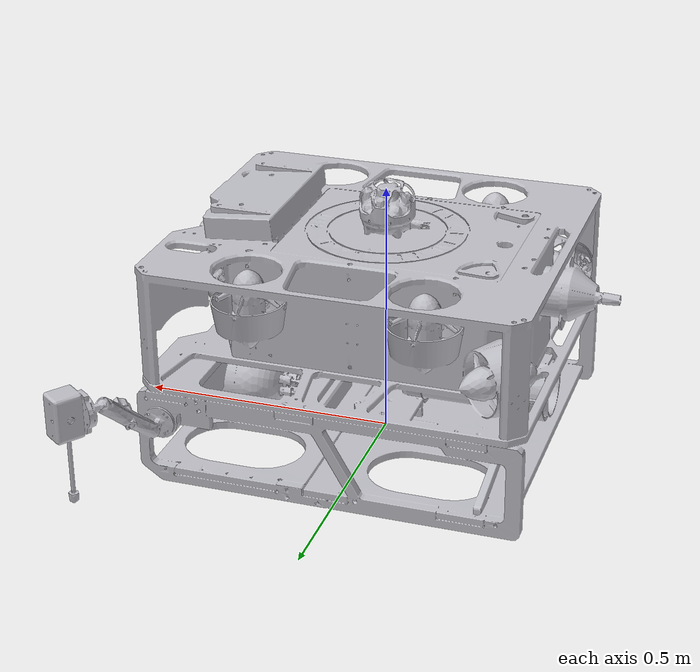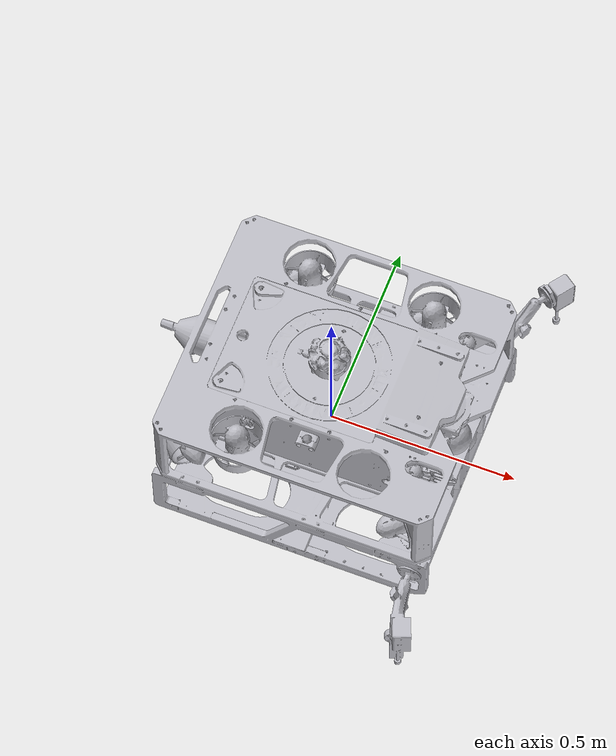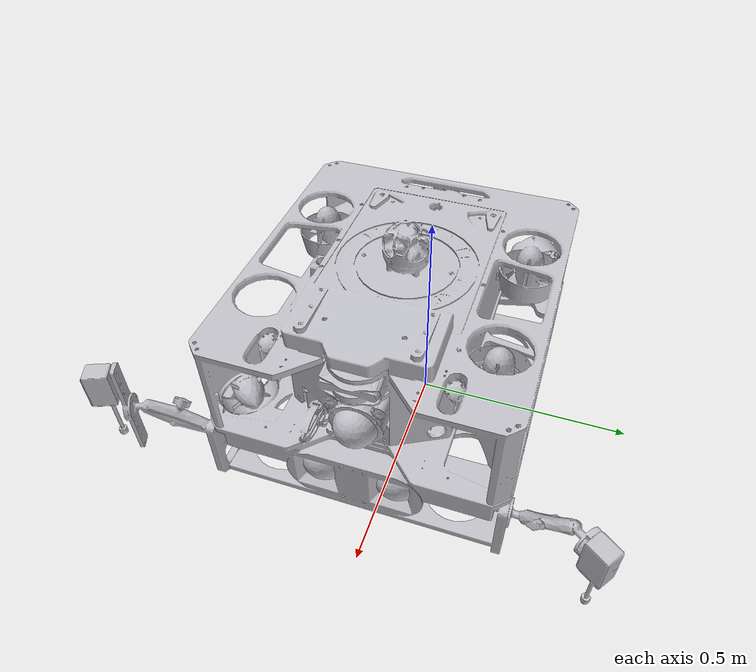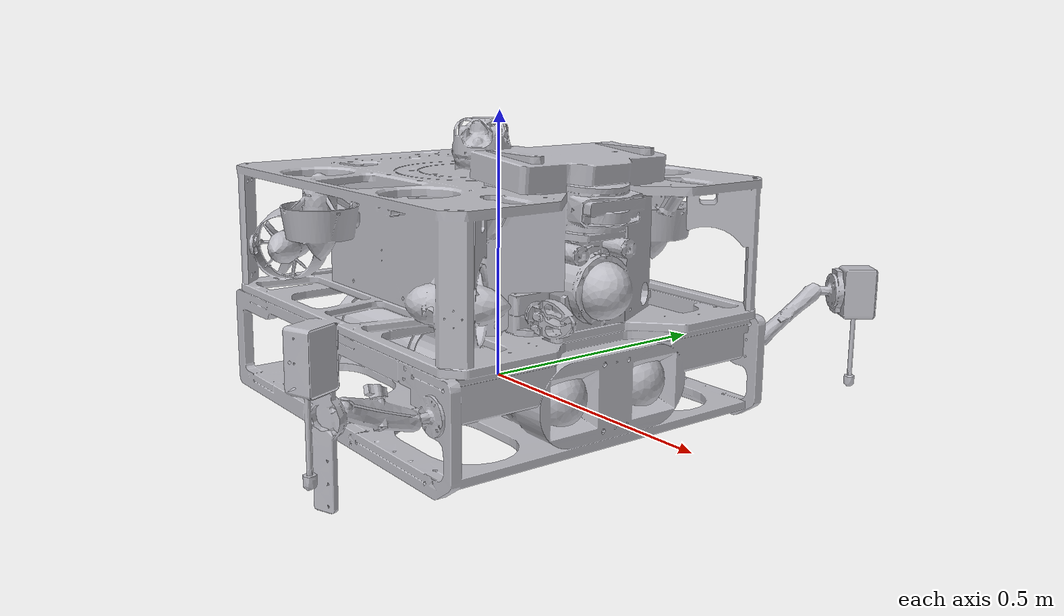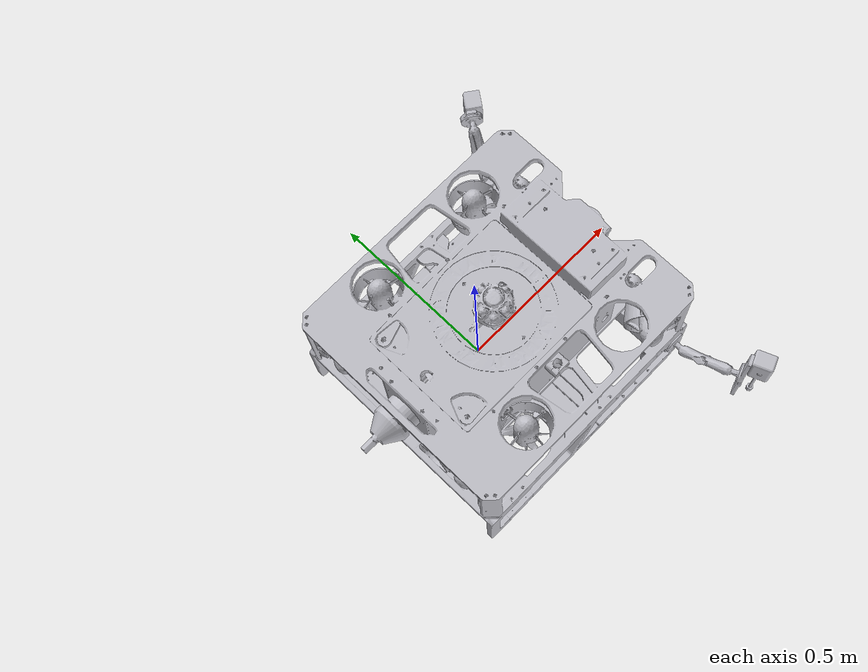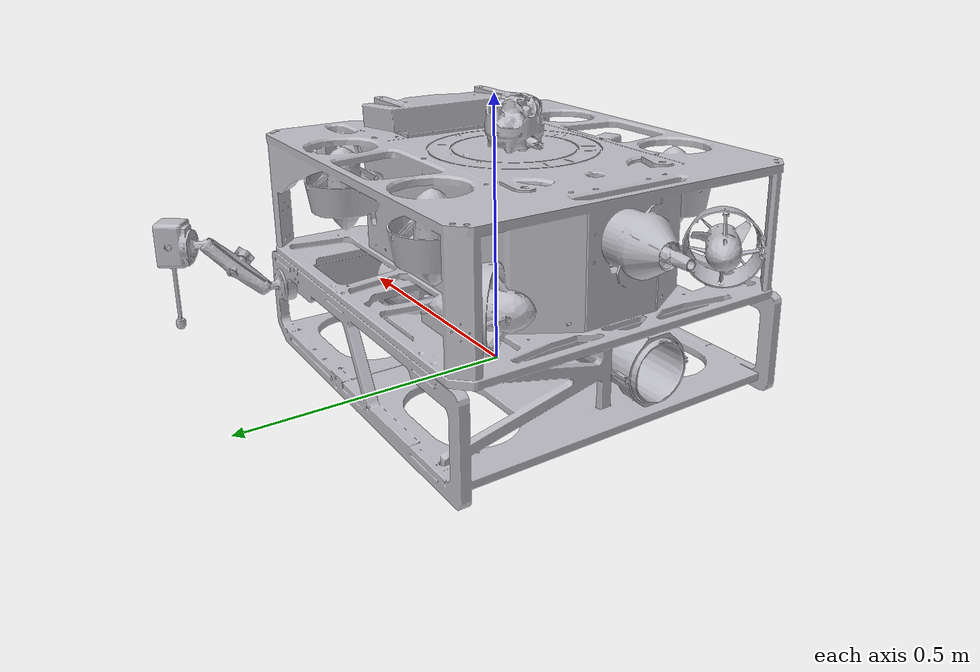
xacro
<?xml version="1.0" ?>
<robot xmlns:xacro="http://ros.org/wiki/xacro" name="rhody">

  <xacro:arg name="namespace" default="rhody" />
  <xacro:property name="namespace" value="$(arg namespace)" scope="global" />
  <xacro:property name="deg" value="${pi / 180.0}" />

  <!-- base_link follows REP-103: x forward, y port, z up.
       The CAD offsets these links came from use y starboard, so all y values
       below are negated with respect to the CAD numbers. -->

  <!-- STL carries no color, so give the link an explicit material.
       Without one RViz renders the mesh red. -->
  <material name="rhody_grey">
    <color rgba="0.75 0.75 0.78 1.0"/>
  </material>

  <!-- Base Link -->
  <link name="base_link">
    <visual>
      <origin xyz="0 0 0" rpy="0 0 0"/>
      <geometry>
        <mesh filename="package://rhody/meshes/JM00004388_decimated.STL"/>
      </geometry>
      <material name="rhody_grey"/>
    </visual>
  </link>

  <!-- DVL Link -->
  <link name="dvl_link"/>
  <joint name="base_to_dvl" type="fixed">
    <parent link="base_link"/>
    <child link="dvl_link"/>
    <origin xyz="0 0 0" rpy="0 0 0"/>
  </joint>

  <!-- USBL -->
  <link name="usbl_link"/>
  <joint name="base_to_usbl" type="fixed">
    <parent link="base_link"/>
    <child link="usbl_link"/>
    <origin xyz="0.013 -0.050 0.385" rpy="0 0 0"/>
  </joint>

  <!-- FLS -->
  <link name="fls_link"/>
  <joint name="base_to_fls" type="fixed">
    <parent link="base_link"/>
    <child link="fls_link"/>
    <origin xyz="0.338 -0.050 0.281" rpy="0 ${5.0 * deg} 0"/>
  </joint>

  <!-- Camera optical frame: z forward, x right, y down (REP-103 / ISAAC ROS) -->
  <xacro:macro name="optical_frame" params="name parent">
    <link name="${name}"/>
    <joint name="${parent}_to_${name}" type="fixed">
      <parent link="${parent}"/>
      <child link="${name}"/>
      <origin xyz="0 0 0" rpy="${-pi/2} 0 ${-pi/2}"/>
    </joint>
  </xacro:macro>

  <!-- Voyis Stereo: Left Entrance Pupil (port side) -->
  <link name="voyis_left_link"/>
  <joint name="base_to_voyis_left" type="fixed">
    <parent link="base_link"/>
    <child link="voyis_left_link"/>
    <origin xyz="0.323 0.035 -0.008" rpy="0 0 0"/>
  </joint>
  <xacro:optical_frame name="voyis_left_optical" parent="voyis_left_link"/>

  <!-- Voyis Stereo: Right Entrance Pupil (starboard side) -->
  <link name="voyis_right_link"/>
  <joint name="base_to_voyis_right" type="fixed">
    <parent link="base_link"/>
    <child link="voyis_right_link"/>
    <origin xyz="0.323 -0.135 -0.008" rpy="0 0 0"/>
  </joint>
  <xacro:optical_frame name="voyis_right_optical" parent="voyis_right_link"/>

  <link name="voyis_imu"/>
  <joint name="voyis_left_to_imu" type="fixed">
    <parent link="voyis_left_link"/>
    <child link="voyis_imu"/>
    <origin xyz="0 0 0" rpy="0 0 0"/>
  </joint>

</robot>
